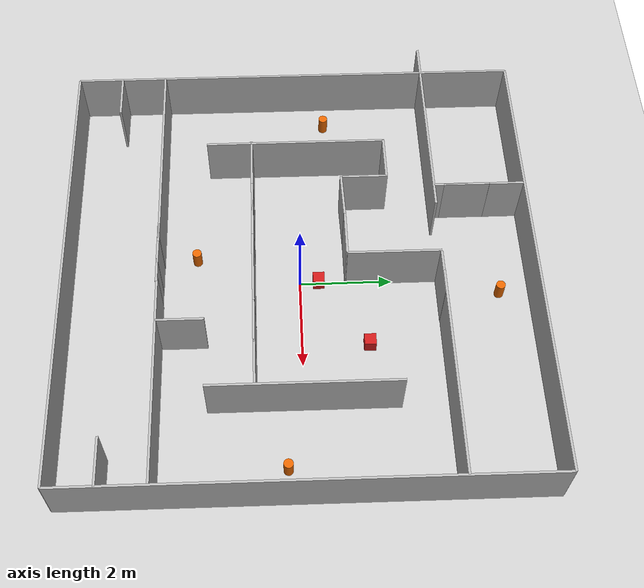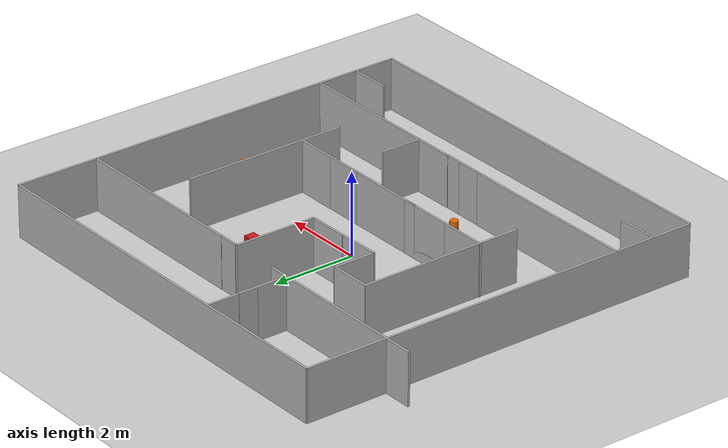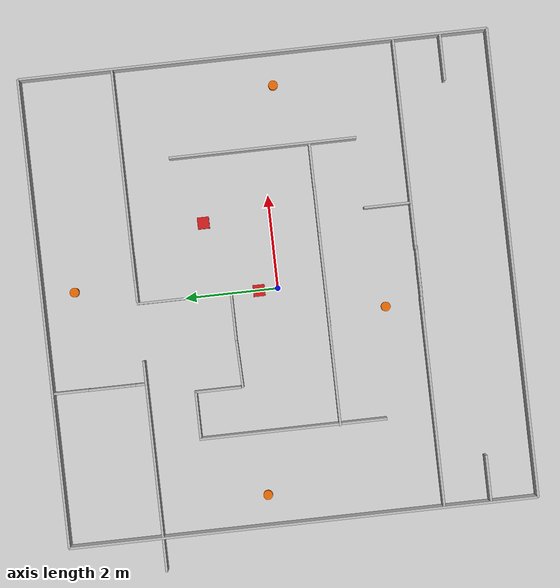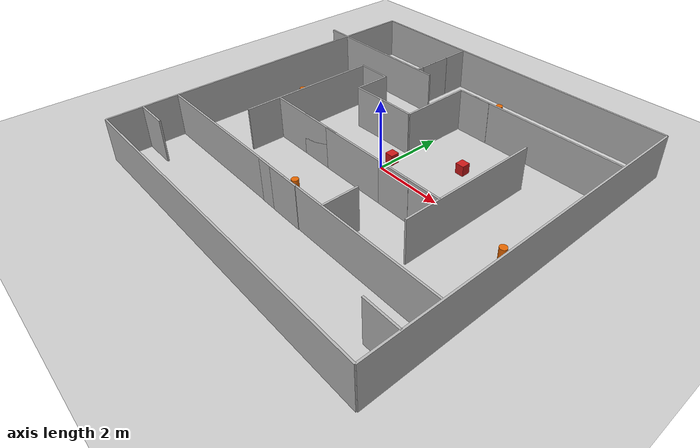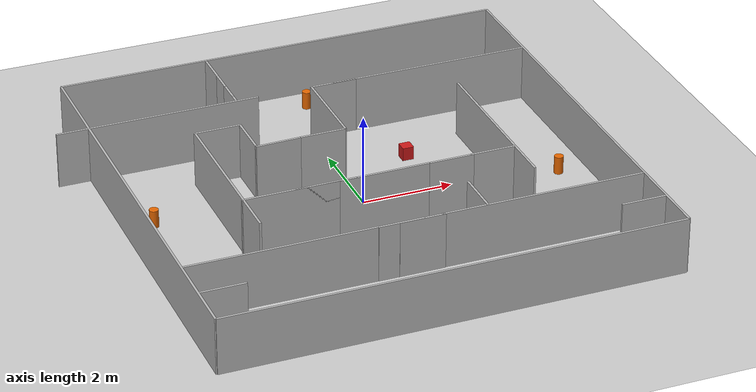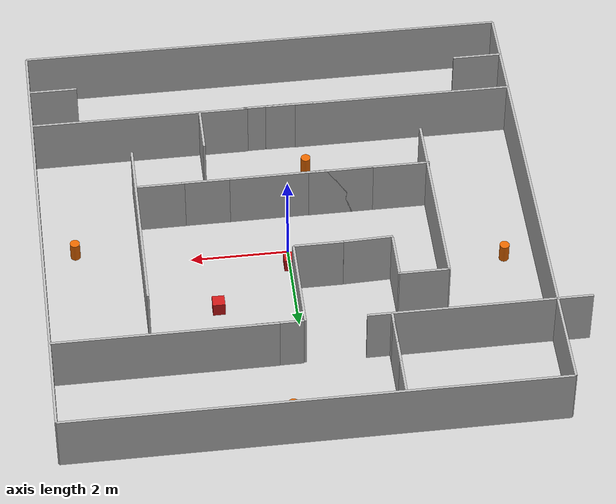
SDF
<sdf version="1.12">
 <world name="complex_maze_50pct">
  <physics name="1ms" type="ode">
   <max_step_size>0.001</max_step_size>
   <real_time_factor>1</real_time_factor>
   <real_time_update_rate>1000</real_time_update_rate>
  </physics>
  <plugin name="gz::sim::systems::Physics" filename="gz-sim-physics-system"/>
  <plugin name="gz::sim::systems::UserCommands" filename="gz-sim-user-commands-system"/>
  <plugin name="gz::sim::systems::SceneBroadcaster" filename="gz-sim-scene-broadcaster-system"/>
  <plugin name="gz::sim::systems::Contact" filename="gz-sim-contact-system"/>
  <plugin name="gz::sim::systems::Sensors" filename="gz-sim-sensors-system">
   <render_engine>ogre2</render_engine>
  </plugin>
  <gravity>0 0 -9.8000000000000007</gravity>
  <magnetic_field>5.5644999999999998e-06 2.2875799999999999e-05 -4.2388400000000002e-05</magnetic_field>
  <atmosphere type="adiabatic"/>
  <scene>
   <ambient>0.400000006 0.400000006 0.400000006 1</ambient>
   <background>0.699999988 0.699999988 0.699999988 1</background>
   <shadows>true</shadows>
  </scene>
  <model name="ground_plane">
   <static>true</static>
   <link name="link">
    <collision name="collision">
     <geometry><plane><normal>0 0 1</normal><size>100 100</size></plane></geometry>
    </collision>
    <visual name="visual">
     <geometry><plane><normal>0 0 1</normal><size>100 100</size></plane></geometry>
     <material>
      <ambient>0.800000012 0.800000012 0.800000012 1</ambient>
      <diffuse>0.800000012 0.800000012 0.800000012 1</diffuse>
      <specular>0.800000012 0.800000012 0.800000012 1</specular>
     </material>
    </visual>
    <inertial>
     <mass>1</mass>
     <inertia><ixx>1</ixx><ixy>0</ixy><ixz>0</ixz><iyy>1</iyy><iyz>0</iyz><izz>1</izz></inertia>
    </inertial>
   </link>
  </model>
  <model name="wall_1">
   <static>true</static>
   <pose>0 -5 0.625 0 0 0</pose>
   <link name="link">
    <collision name="collision">
     <geometry><box><size>10 0.050000000000000003 1.25</size></box></geometry>
    </collision>
    <visual name="visual"><geometry><box><size>10 0.050000000000000003 1.25</size></box></geometry></visual>
    <inertial>
     <mass>1</mass>
     <inertia><ixx>1</ixx><ixy>0</ixy><ixz>0</ixz><iyy>1</iyy><iyz>0</iyz><izz>1</izz></inertia>
    </inertial>
   </link>
  </model>
  <model name="wall_2">
   <static>true</static>
   <pose>0 5 0.625 0 0 0</pose>
   <link name="link">
    <collision name="collision">
     <geometry><box><size>10 0.050000000000000003 1.25</size></box></geometry>
    </collision>
    <visual name="visual"><geometry><box><size>10 0.050000000000000003 1.25</size></box></geometry></visual>
    <inertial>
     <mass>1</mass>
     <inertia><ixx>1</ixx><ixy>0</ixy><ixz>0</ixz><iyy>1</iyy><iyz>0</iyz><izz>1</izz></inertia>
    </inertial>
   </link>
  </model>
  <model name="wall_3">
   <static>true</static>
   <pose>-5 0 0.625 0 0 1.5708000000000011</pose>
   <link name="link">
    <collision name="collision">
     <geometry><box><size>10 0.050000000000000003 1.25</size></box></geometry>
    </collision>
    <visual name="visual"><geometry><box><size>10 0.050000000000000003 1.25</size></box></geometry></visual>
    <inertial>
     <mass>1</mass>
     <inertia><ixx>1</ixx><ixy>0</ixy><ixz>0</ixz><iyy>1</iyy><iyz>0</iyz><izz>1</izz></inertia>
    </inertial>
   </link>
  </model>
  <model name="wall_4">
   <static>true</static>
   <pose>5 0 0.625 0 0 1.5708000000000011</pose>
   <link name="link">
    <collision name="collision">
     <geometry><box><size>10 0.050000000000000003 1.25</size></box></geometry>
    </collision>
    <visual name="visual"><geometry><box><size>10 0.050000000000000003 1.25</size></box></geometry></visual>
    <inertial>
     <mass>1</mass>
     <inertia><ixx>1</ixx><ixy>0</ixy><ixz>0</ixz><iyy>1</iyy><iyz>0</iyz><izz>1</izz></inertia>
    </inertial>
   </link>
  </model>
  <model name="wall_5">
   <static>true</static>
   <pose>-2.75 -3 0.625 0 0 0</pose>
   <link name="link">
    <collision name="collision">
     <geometry><box><size>4.5 0.050000000000000003 1.25</size></box></geometry>
    </collision>
    <visual name="visual"><geometry><box><size>4.5 0.050000000000000003 1.25</size></box></geometry></visual>
    <inertial>
     <mass>1</mass>
     <inertia><ixx>1</ixx><ixy>0</ixy><ixz>0</ixz><iyy>1</iyy><iyz>0</iyz><izz>1</izz></inertia>
    </inertial>
   </link>
  </model>
  <model name="wall_6">
   <static>true</static>
   <pose>2.75 -3 0.625 0 0 0</pose>
   <link name="link">
    <collision name="collision">
     <geometry><box><size>4.5 0.050000000000000003 1.25</size></box></geometry>
    </collision>
    <visual name="visual"><geometry><box><size>4.5 0.050000000000000003 1.25</size></box></geometry></visual>
    <inertial>
     <mass>1</mass>
     <inertia><ixx>1</ixx><ixy>0</ixy><ixz>0</ixz><iyy>1</iyy><iyz>0</iyz><izz>1</izz></inertia>
    </inertial>
   </link>
  </model>
  <model name="wall_7">
   <static>true</static>
   <pose>-1.7924422 -1 0.625 0 0 0</pose>
   <link name="link">
    <collision name="collision">
     <geometry><box><size>2.5 0.050000000000000003 1.25</size></box></geometry>
    </collision>
    <visual name="visual"><geometry><box><size>2.5 0.050000000000000003 1.25</size></box></geometry></visual>
    <inertial>
     <mass>1</mass>
     <inertia><ixx>1</ixx><ixy>0</ixy><ixz>0</ixz><iyy>1</iyy><iyz>0</iyz><izz>1</izz></inertia>
    </inertial>
   </link>
  </model>
  <model name="wall_8">
   <static>true</static>
   <pose>-1.3788484000000001 -1 0.625 0 0 0</pose>
   <link name="link">
    <collision name="collision">
     <geometry><box><size>1 0.050000000000000003 1.25</size></box></geometry>
    </collision>
    <visual name="visual"><geometry><box><size>1 0.050000000000000003 1.25</size></box></geometry></visual>
    <inertial>
     <mass>1</mass>
     <inertia><ixx>1</ixx><ixy>0</ixy><ixz>0</ixz><iyy>1</iyy><iyz>0</iyz><izz>1</izz></inertia>
    </inertial>
   </link>
  </model>
  <model name="wall_9">
   <static>true</static>
   <pose>1.5633634999999999 -1 0.625 0 0 0</pose>
   <link name="link">
    <collision name="collision">
     <geometry><box><size>1 0.050000000000000003 1.25</size></box></geometry>
    </collision>
    <visual name="visual"><geometry><box><size>1 0.050000000000000003 1.25</size></box></geometry></visual>
    <inertial>
     <mass>1</mass>
     <inertia><ixx>1</ixx><ixy>0</ixy><ixz>0</ixz><iyy>1</iyy><iyz>0</iyz><izz>1</izz></inertia>
    </inertial>
   </link>
  </model>
  <model name="wall_12">
   <static>true</static>
   <pose>-0.50808410000000004 1 0.625 0 0 0</pose>
   <link name="link">
    <collision name="collision">
     <geometry><box><size>1 0.050000000000000003 1.25</size></box></geometry>
    </collision>
    <visual name="visual"><geometry><box><size>1 0.050000000000000003 1.25</size></box></geometry></visual>
    <inertial>
     <mass>1</mass>
     <inertia><ixx>1</ixx><ixy>0</ixy><ixz>0</ixz><iyy>1</iyy><iyz>0</iyz><izz>1</izz></inertia>
    </inertial>
   </link>
  </model>
  <model name="wall_15">
   <static>true</static>
   <pose>-3.4676473140716553 3 0.625 0 0 0</pose>
   <link name="link">
    <collision name="collision">
     <geometry><box><size>4.5 0.050000000000000003 1.25</size></box></geometry>
    </collision>
    <visual name="visual"><geometry><box><size>4.5 0.050000000000000003 1.25</size></box></geometry></visual>
    <inertial>
     <mass>1</mass>
     <inertia><ixx>1</ixx><ixy>0</ixy><ixz>0</ixz><iyy>1</iyy><iyz>0</iyz><izz>1</izz></inertia>
    </inertial>
   </link>
  </model>
  <model name="wall_16">
   <static>true</static>
   <pose>2.75 3 0.625 0 0 0</pose>
   <link name="link">
    <collision name="collision">
     <geometry><box><size>4.5 0.050000000000000003 1.25</size></box></geometry>
    </collision>
    <visual name="visual"><geometry><box><size>4.5 0.050000000000000003 1.25</size></box></geometry></visual>
    <inertial>
     <mass>1</mass>
     <inertia><ixx>1</ixx><ixy>0</ixy><ixz>0</ixz><iyy>1</iyy><iyz>0</iyz><izz>1</izz></inertia>
    </inertial>
   </link>
  </model>
  <model name="wall_17">
   <static>true</static>
   <pose>-1.71212005 3.7237309999999999 0.625 0 0 1.5708000000000011</pose>
   <link name="link">
    <collision name="collision">
     <geometry><box><size>1 0.050000000000000003 1.25</size></box></geometry>
    </collision>
    <visual name="visual"><geometry><box><size>1 0.050000000000000003 1.25</size></box></geometry></visual>
    <inertial>
     <mass>1</mass>
     <inertia><ixx>1</ixx><ixy>0</ixy><ixz>0</ixz><iyy>1</iyy><iyz>0</iyz><izz>1</izz></inertia>
    </inertial>
   </link>
  </model>
  <model name="wall_18">
   <static>true</static>
   <pose>-3 0 0.625 0 0 1.5708000000000011</pose>
   <link name="link">
    <collision name="collision">
     <geometry><box><size>4 0.050000000000000003 1.25</size></box></geometry>
    </collision>
    <visual name="visual"><geometry><box><size>4 0.050000000000000003 1.25</size></box></geometry></visual>
    <inertial>
     <mass>1</mass>
     <inertia><ixx>1</ixx><ixy>0</ixy><ixz>0</ixz><iyy>1</iyy><iyz>0</iyz><izz>1</izz></inertia>
    </inertial>
   </link>
  </model>
  <model name="wall_20">
   <static>true</static>
   <pose>-1.5089884499999999 0.98289515000000005 0.625 0 0 0.030002999999999985</pose>
   <link name="link">
    <collision name="collision">
     <geometry><box><size>1 0.050000000000000003 1.25</size></box></geometry>
    </collision>
    <visual name="visual"><geometry><box><size>1 0.050000000000000003 1.25</size></box></geometry></visual>
    <inertial>
     <mass>1</mass>
     <inertia><ixx>1</ixx><ixy>0</ixy><ixz>0</ixz><iyy>1</iyy><iyz>0</iyz><izz>1</izz></inertia>
    </inertial>
   </link>
  </model>
  <model name="wall_21">
   <static>true</static>
   <pose>3 0 0.625 0 0 1.5708000000000011</pose>
   <link name="link">
    <collision name="collision">
     <geometry><box><size>4 0.050000000000000003 1.25</size></box></geometry>
    </collision>
    <visual name="visual"><geometry><box><size>4 0.050000000000000003 1.25</size></box></geometry></visual>
    <inertial>
     <mass>1</mass>
     <inertia><ixx>1</ixx><ixy>0</ixy><ixz>0</ixz><iyy>1</iyy><iyz>0</iyz><izz>1</izz></inertia>
    </inertial>
   </link>
  </model>
  <model name="wall_23">
   <static>true</static>
   <pose>0.079525614999999994 -1.0024999000000001 0.625 0 0 0.0034538000000000017</pose>
   <link name="link">
    <collision name="collision">
     <geometry><box><size>2 0.050000000000000003 1.25</size></box></geometry>
    </collision>
    <visual name="visual"><geometry><box><size>2 0.050000000000000003 1.25</size></box></geometry></visual>
    <inertial>
     <mass>1</mass>
     <inertia><ixx>1</ixx><ixy>0</ixy><ixz>0</ixz><iyy>1</iyy><iyz>0</iyz><izz>1</izz></inertia>
    </inertial>
   </link>
  </model>
  <model name="wall_24">
   <static>true</static>
   <pose>0 2 0.625 0 0 1.5708000000000011</pose>
   <link name="link">
    <collision name="collision">
     <geometry><box><size>2 0.050000000000000003 1.25</size></box></geometry>
    </collision>
    <visual name="visual"><geometry><box><size>2 0.050000000000000003 1.25</size></box></geometry></visual>
    <inertial>
     <mass>1</mass>
     <inertia><ixx>1</ixx><ixy>0</ixy><ixz>0</ixz><iyy>1</iyy><iyz>0</iyz><izz>1</izz></inertia>
    </inertial>
   </link>
  </model>
  <model name="wall_25">
   <static>true</static>
   <pose>-4.5 -4 0.625 0 0 0</pose>
   <link name="link">
    <collision name="collision">
     <geometry><box><size>1 0.050000000000000003 1.25</size></box></geometry>
    </collision>
    <visual name="visual"><geometry><box><size>1 0.050000000000000003 1.25</size></box></geometry></visual>
    <inertial>
     <mass>1</mass>
     <inertia><ixx>1</ixx><ixy>0</ixy><ixz>0</ixz><iyy>1</iyy><iyz>0</iyz><izz>1</izz></inertia>
    </inertial>
   </link>
  </model>
  <model name="wall_26">
   <static>true</static>
   <pose>-0.37826299499999999 -3.0077641000000002 0.625 0 0 0</pose>
   <link name="link">
    <collision name="collision">
     <geometry><box><size>1 0.050000000000000003 1.25</size></box></geometry>
    </collision>
    <visual name="visual"><geometry><box><size>1 0.050000000000000003 1.25</size></box></geometry></visual>
    <inertial>
     <mass>1</mass>
     <inertia><ixx>1</ixx><ixy>0</ixy><ixz>0</ixz><iyy>1</iyy><iyz>0</iyz><izz>1</izz></inertia>
    </inertial>
   </link>
  </model>
  <model name="wall_27">
   <static>true</static>
   <pose>-1.7091699499999999 4.5975532499999998 0.625 0 0 1.5708000000000011</pose>
   <link name="link">
    <collision name="collision">
     <geometry><box><size>0.75 0.050000000000000003 1.25</size></box></geometry>
    </collision>
    <visual name="visual"><geometry><box><size>0.75 0.050000000000000003 1.25</size></box></geometry></visual>
    <inertial>
     <mass>1</mass>
     <inertia><ixx>1</ixx><ixy>0</ixy><ixz>0</ixz><iyy>1</iyy><iyz>0</iyz><izz>1</izz></inertia>
    </inertial>
   </link>
  </model>
  <model name="wall_28">
   <static>true</static>
   <pose>0.074609949999999994 -3.0118000500000002 0.625 0 0 0</pose>
   <link name="link">
    <collision name="collision">
     <geometry><box><size>1 0.050000000000000003 1.25</size></box></geometry>
    </collision>
    <visual name="visual"><geometry><box><size>1 0.050000000000000003 1.25</size></box></geometry></visual>
    <inertial>
     <mass>1</mass>
     <inertia><ixx>1</ixx><ixy>0</ixy><ixz>0</ixz><iyy>1</iyy><iyz>0</iyz><izz>1</izz></inertia>
    </inertial>
   </link>
  </model>
  <model name="wall_29">
   <static>true</static>
   <pose>4.5 -4 0.625 0 0 0</pose>
   <link name="link">
    <collision name="collision">
     <geometry><box><size>1 0.050000000000000003 1.25</size></box></geometry>
    </collision>
    <visual name="visual"><geometry><box><size>1 0.050000000000000003 1.25</size></box></geometry></visual>
    <inertial>
     <mass>1</mass>
     <inertia><ixx>1</ixx><ixy>0</ixy><ixz>0</ixz><iyy>1</iyy><iyz>0</iyz><izz>1</izz></inertia>
    </inertial>
   </link>
  </model>
  <model name="wall_30">
   <static>true</static>
   <pose>-1.7123453500000001 3.3790154000000001 0.625 0 0 1.5708000000000011</pose>
   <link name="link">
    <collision name="collision">
     <geometry><box><size>0.75 0.050000000000000003 1.25</size></box></geometry>
    </collision>
    <visual name="visual"><geometry><box><size>0.75 0.050000000000000003 1.25</size></box></geometry></visual>
    <inertial>
     <mass>1</mass>
     <inertia><ixx>1</ixx><ixy>0</ixy><ixz>0</ixz><iyy>1</iyy><iyz>0</iyz><izz>1</izz></inertia>
    </inertial>
   </link>
  </model>
  <model name="wall_36">
   <static>true</static>
   <pose>1.5 -2.5 0.625 0 0 1.5708000000000011</pose>
   <link name="link">
    <collision name="collision">
     <geometry><box><size>1 0.050000000000000003 1.25</size></box></geometry>
    </collision>
    <visual name="visual"><geometry><box><size>1 0.050000000000000003 1.25</size></box></geometry></visual>
    <inertial>
     <mass>1</mass>
     <inertia><ixx>1</ixx><ixy>0</ixy><ixz>0</ixz><iyy>1</iyy><iyz>0</iyz><izz>1</izz></inertia>
    </inertial>
   </link>
  </model>
  <model name="wall_38">
   <static>true</static>
   <pose>2.5 -0.9967203 0.625 0 0 0</pose>
   <link name="link">
    <collision name="collision">
     <geometry><box><size>1 0.050000000000000003 1.25</size></box></geometry>
    </collision>
    <visual name="visual"><geometry><box><size>1 0.050000000000000003 1.25</size></box></geometry></visual>
    <inertial>
     <mass>1</mass>
     <inertia><ixx>1</ixx><ixy>0</ixy><ixz>0</ixz><iyy>1</iyy><iyz>0</iyz><izz>1</izz></inertia>
    </inertial>
   </link>
  </model>
  <model name="wall_47">
   <static>true</static>
   <pose>-2.5 1.9750093 0.625 0 0 0</pose>
   <link name="link">
    <collision name="collision">
     <geometry><box><size>1 0.050000000000000003 1.25</size></box></geometry>
    </collision>
    <visual name="visual"><geometry><box><size>1 0.050000000000000003 1.25</size></box></geometry></visual>
    <inertial>
     <mass>1</mass>
     <inertia><ixx>1</ixx><ixy>0</ixy><ixz>0</ixz><iyy>1</iyy><iyz>0</iyz><izz>1</izz></inertia>
    </inertial>
   </link>
  </model>
  <model name="wall_53">
   <static>true</static>
   <pose>-2 1.5 0.625 0 0 1.5708000000000011</pose>
   <link name="link">
    <collision name="collision">
     <geometry><box><size>1 0.050000000000000003 1.25</size></box></geometry>
    </collision>
    <visual name="visual"><geometry><box><size>1 0.050000000000000003 1.25</size></box></geometry></visual>
    <inertial>
     <mass>1</mass>
     <inertia><ixx>1</ixx><ixy>0</ixy><ixz>0</ixz><iyy>1</iyy><iyz>0</iyz><izz>1</izz></inertia>
    </inertial>
   </link>
  </model>
  <model name="wall_57">
   <static>true</static>
   <pose>0.52620100000000003 2.9947599999999999 0.625 0 0 0</pose>
   <link name="link">
    <collision name="collision">
     <geometry><box><size>1 0.050000000000000003 1.25</size></box></geometry>
    </collision>
    <visual name="visual"><geometry><box><size>1 0.050000000000000003 1.25</size></box></geometry></visual>
    <inertial>
     <mass>1</mass>
     <inertia><ixx>1</ixx><ixy>0</ixy><ixz>0</ixz><iyy>1</iyy><iyz>0</iyz><izz>1</izz></inertia>
    </inertial>
   </link>
  </model>
  <model name="obstacle_cylinder_2">
   <static>true</static>
   <pose>4.3273129463195801 -0.36906400322914124 0.20000000298023224 0 0 0</pose>
   <link name="link">
    <collision name="collision">
     <geometry>
      <cylinder><radius>0.10000000000000001</radius><length>0.40000000000000002</length></cylinder>
     </geometry>
    </collision>
    <visual name="visual">
     <geometry>
      <cylinder><radius>0.10000000000000001</radius><length>0.40000000000000002</length></cylinder>
     </geometry>
     <material>
      <ambient>0.899999976 0.400000006 0 1</ambient>
      <diffuse>0.899999976 0.400000006 0 1</diffuse>
      <specular>0.300000012 0.100000001 0 1</specular>
     </material>
    </visual>
    <inertial>
     <mass>1</mass>
     <inertia><ixx>1</ixx><ixy>0</ixy><ixz>0</ixz><iyy>1</iyy><iyz>0</iyz><izz>1</izz></inertia>
    </inertial>
   </link>
  </model>
  <model name="obstacle_cylinder_3">
   <static>true</static>
   <pose>-4.3675498499999996 0.68877734999999995 0.20000000000000001 0 0 0</pose>
   <link name="link">
    <collision name="collision">
     <geometry>
      <cylinder><radius>0.10000000000000001</radius><length>0.40000000000000002</length></cylinder>
     </geometry>
    </collision>
    <visual name="visual">
     <geometry>
      <cylinder><radius>0.10000000000000001</radius><length>0.40000000000000002</length></cylinder>
     </geometry>
     <material>
      <ambient>0.899999976 0.400000006 0 1</ambient>
      <diffuse>0.899999976 0.400000006 0 1</diffuse>
      <specular>0.300000012 0.100000001 0 1</specular>
     </material>
    </visual>
    <inertial>
     <mass>1</mass>
     <inertia><ixx>1</ixx><ixy>0</ixy><ixz>0</ixz><iyy>1</iyy><iyz>0</iyz><izz>1</izz></inertia>
    </inertial>
   </link>
  </model>
  <model name="obstacle_cylinder_5">
   <static>true</static>
   <pose>-0.63660000000000005 -2.25 0.20000000000000001 0 0 0</pose>
   <link name="link">
    <collision name="collision">
     <geometry>
      <cylinder><radius>0.10000000000000001</radius><length>0.40000000000000002</length></cylinder>
     </geometry>
    </collision>
    <visual name="visual">
     <geometry>
      <cylinder><radius>0.10000000000000001</radius><length>0.40000000000000002</length></cylinder>
     </geometry>
     <material>
      <ambient>0.899999976 0.400000006 0 1</ambient>
      <diffuse>0.899999976 0.400000006 0 1</diffuse>
      <specular>0.300000012 0.100000001 0 1</specular>
     </material>
    </visual>
    <inertial>
     <mass>1</mass>
     <inertia><ixx>1</ixx><ixy>0</ixy><ixz>0</ixz><iyy>1</iyy><iyz>0</iyz><izz>1</izz></inertia>
    </inertial>
   </link>
  </model>
  <model name="obstacle_cylinder_6">
   <static>true</static>
   <pose>0.38859972357749939 4.3314599990844727 0.20000000298023224 0 0 0</pose>
   <link name="link">
    <collision name="collision">
     <geometry>
      <cylinder><radius>0.10000000000000001</radius><length>0.40000000000000002</length></cylinder>
     </geometry>
    </collision>
    <visual name="visual">
     <geometry>
      <cylinder><radius>0.10000000000000001</radius><length>0.40000000000000002</length></cylinder>
     </geometry>
     <material>
      <ambient>0.899999976 0.400000006 0 1</ambient>
      <diffuse>0.899999976 0.400000006 0 1</diffuse>
      <specular>0.300000012 0.100000001 0 1</specular>
     </material>
    </visual>
    <inertial>
     <mass>1</mass>
     <inertia><ixx>1</ixx><ixy>0</ixy><ixz>0</ixz><iyy>1</iyy><iyz>0</iyz><izz>1</izz></inertia>
    </inertial>
   </link>
  </model>
  <model name="obstacle_box_5">
   <static>true</static>
   <pose>0 0.40587800741195679 0.15000000596046448 0 0 0</pose>
   <link name="link">
    <collision name="collision">
     <geometry><box><size>0.25 0.25 0.29999999999999999</size></box></geometry>
    </collision>
    <visual name="visual">
     <geometry><box><size>0.25 0.25 0.29999999999999999</size></box></geometry>
     <material>
      <ambient>0.800000012 0.100000001 0.100000001 1</ambient>
      <diffuse>0.800000012 0.100000001 0.100000001 1</diffuse>
      <specular>0.300000012 0.0500000007 0.0500000007 1</specular>
     </material>
    </visual>
    <inertial>
     <mass>1</mass>
     <inertia><ixx>1</ixx><ixy>0</ixy><ixz>0</ixz><iyy>1</iyy><iyz>0</iyz><izz>1</izz></inertia>
    </inertial>
   </link>
  </model>
  <model name="obstacle_box_5_1">
   <static>true</static>
   <pose>1.5652300119400024 1.4315552711486816 0.15000000596046448 0 0 0</pose>
   <link name="link">
    <collision name="collision">
     <geometry><box><size>0.25 0.25 0.29999999999999999</size></box></geometry>
    </collision>
    <visual name="visual">
     <geometry><box><size>0.25 0.25 0.29999999999999999</size></box></geometry>
     <material>
      <ambient>0.800000012 0.100000001 0.100000001 1</ambient>
      <diffuse>0.800000012 0.100000001 0.100000001 1</diffuse>
      <specular>0.300000012 0.0500000007 0.0500000007 1</specular>
     </material>
    </visual>
    <inertial>
     <mass>1</mass>
     <inertia><ixx>1</ixx><ixy>0</ixy><ixz>0</ixz><iyy>1</iyy><iyz>0</iyz><izz>1</izz></inertia>
    </inertial>
   </link>
  </model>
  <light name="sun" type="directional">
   <pose>0 0 10 0 0 0</pose>
   <intensity>1</intensity>
   <direction>-0.5 0.10000000000000001 -0.90000000000000002</direction>
   <diffuse>0.800000012 0.800000012 0.800000012 1</diffuse>
   <specular>0.200000003 0.200000003 0.200000003 1</specular>
   <attenuation>
    <range>1000</range>
    <linear>0.01</linear>
    <constant>0.90000000000000002</constant>
    <quadratic>0.001</quadratic>
   </attenuation>
   <spot><inner_angle>0</inner_angle><outer_angle>0</outer_angle><falloff>0</falloff></spot>
  </light>
 </world>
</sdf>
